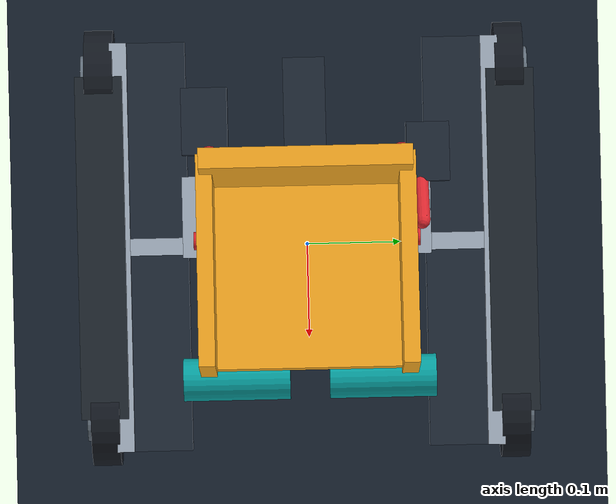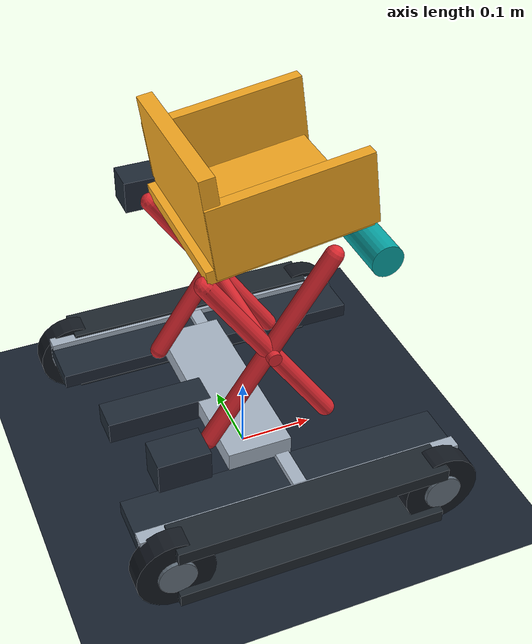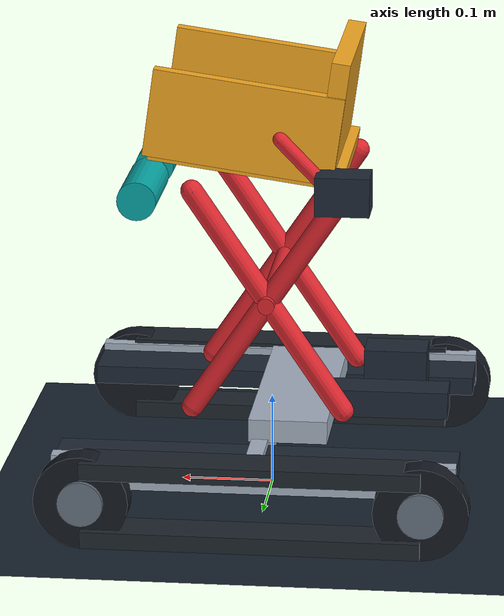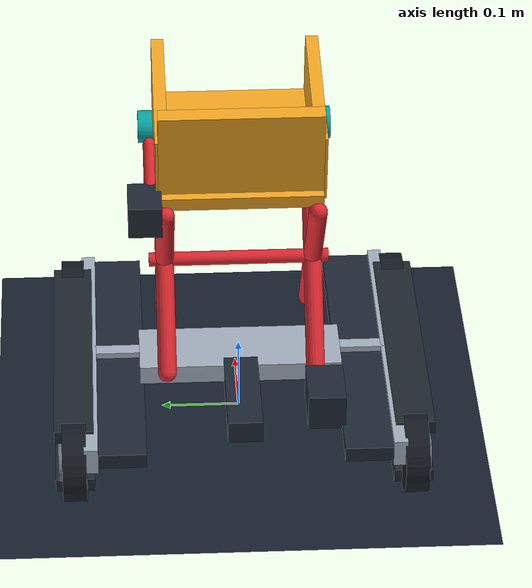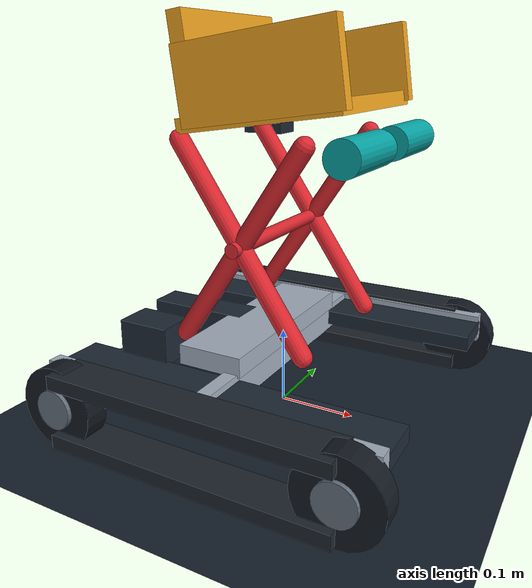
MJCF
<mujoco model="Scissor Basket Goal Loader"><compiler angle="degree" /><visual><global offwidth="800" offheight="600" /><quality offsamples="0" /><headlight ambient=".45 .45 .45" /></visual><worldbody><light pos="0 -1 3" castshadow="false" /><geom type="plane" size="2 2 .1" rgba=".09 .13 .18 1" /><geom type="box" pos="0 -0.195 0.0758" size="0.215 0.009 0.018" euler="0 0 0" rgba=".65 .7 .76 1" contype="0" conaffinity="0" /><geom type="box" pos="0 0.195 0.0758" size="0.215 0.009 0.018" euler="0 0 0" rgba=".65 .7 .76 1" contype="0" conaffinity="0" /><geom type="box" pos="0 0 0.0758" size="0.009 0.195 0.018" euler="0 0 0" rgba=".65 .7 .76 1" contype="0" conaffinity="0" /><geom type="box" pos="0 -0.16 0.0758" size="0.215 0.035 0.01" euler="0 0 0" rgba=".12 .16 .21 1" contype="0" conaffinity="0" /><geom type="box" pos="0 0.16 0.0758" size="0.215 0.035 0.01" euler="0 0 0" rgba=".12 .16 .21 1" contype="0" conaffinity="0" /><geom type="cylinder" pos="-0.18 -0.216 0.0508" size="0.0508 0.015" euler="90 0 0" rgba=".08 .1 .13 1" contype="0" conaffinity="0" /><geom type="cylinder" pos="-0.18 -0.233 0.0508" size="0.024384 0.003" euler="90 0 0" rgba=".4 .45 .5 1" contype="0" conaffinity="0" /><geom type="cylinder" pos="0.18 -0.216 0.0508" size="0.0508 0.015" euler="90 0 0" rgba=".08 .1 .13 1" contype="0" conaffinity="0" /><geom type="cylinder" pos="0.18 -0.233 0.0508" size="0.024384 0.003" euler="90 0 0" rgba=".4 .45 .5 1" contype="0" conaffinity="0" /><geom type="box" pos="0 -0.216 0.0127" size="0.18 0.025 0.009" euler="0 0 0" rgba=".12 .15 .18 1" contype="0" conaffinity="0" /><geom type="box" pos="0 -0.216 0.08889999999999999" size="0.18 0.025 0.009" euler="0 0 0" rgba=".12 .15 .18 1" contype="0" conaffinity="0" /><geom type="cylinder" pos="-0.18 0.216 0.0508" size="0.0508 0.015" euler="90 0 0" rgba=".08 .1 .13 1" contype="0" conaffinity="0" /><geom type="cylinder" pos="-0.18 0.233 0.0508" size="0.024384 0.003" euler="90 0 0" rgba=".4 .45 .5 1" contype="0" conaffinity="0" /><geom type="cylinder" pos="0.18 0.216 0.0508" size="0.0508 0.015" euler="90 0 0" rgba=".08 .1 .13 1" contype="0" conaffinity="0" /><geom type="cylinder" pos="0.18 0.233 0.0508" size="0.024384 0.003" euler="90 0 0" rgba=".4 .45 .5 1" contype="0" conaffinity="0" /><geom type="box" pos="0 0.216 0.0127" size="0.18 0.025 0.009" euler="0 0 0" rgba=".12 .15 .18 1" contype="0" conaffinity="0" /><geom type="box" pos="0 0.216 0.08889999999999999" size="0.18 0.025 0.009" euler="0 0 0" rgba=".12 .15 .18 1" contype="0" conaffinity="0" /><geom type="box" pos="-0.125 0.0 0.1008" size="0.07 0.022 0.015" euler="0 0 0" rgba=".12 .16 .21 1" contype="0" conaffinity="0" /><geom type="box" pos="-0.03 0.0 0.103" size="0.0425 0.13 0.0125" euler="0.0 0.0 0.0" rgba=".65 .7 .76 1" contype="0" conaffinity="0" /><geom type="capsule" pos="-0.005 0.095 0.238" size="0.012 0.1455" euler="0.0 34.0 0.0" rgba=".87 .16 .19 1" contype="0" conaffinity="0" /><geom type="capsule" pos="-0.005 0.095 0.238" size="0.012 0.1455" euler="0.0 -34.0 0.0" rgba=".87 .16 .19 1" contype="0" conaffinity="0" /><geom type="capsule" pos="-0.005 -0.095 0.238" size="0.012 0.1455" euler="0.0 34.0 0.0" rgba=".87 .16 .19 1" contype="0" conaffinity="0" /><geom type="capsule" pos="-0.005 -0.095 0.238" size="0.012 0.1455" euler="0.0 -34.0 0.0" rgba=".87 .16 .19 1" contype="0" conaffinity="0" /><geom type="cylinder" pos="-0.005 0.0 0.238" size="0.009 0.115" euler="90.0 0.0 0.0" rgba=".87 .16 .19 1" contype="0" conaffinity="0" /><geom type="box" pos="0.018 0.0 0.388" size="0.105 0.1025 0.009" euler="0.0 -8.0 0.0" rgba=".96 .66 .13 1" contype="0" conaffinity="0" /><geom type="box" pos="-0.075 0.0 0.443" size="0.01 0.1025 0.06" euler="0.0 -8.0 0.0" rgba=".96 .66 .13 1" contype="0" conaffinity="0" /><geom type="box" pos="0.02 0.098 0.432" size="0.1025 0.008 0.0475" euler="0.0 -8.0 0.0" rgba=".96 .66 .13 1" contype="0" conaffinity="0" /><geom type="box" pos="0.02 -0.098 0.432" size="0.1025 0.008 0.0475" euler="0.0 -8.0 0.0" rgba=".96 .66 .13 1" contype="0" conaffinity="0" /><geom type="cylinder" pos="0.132 0.072 0.353" size="0.021 0.0525" euler="90.0 0.0 0.0" rgba=".03 .65 .65 1" contype="0" conaffinity="0" /><geom type="cylinder" pos="0.132 -0.072 0.353" size="0.021 0.0525" euler="90.0 0.0 0.0" rgba=".03 .65 .65 1" contype="0" conaffinity="0" /><geom type="capsule" pos="-0.051 0.112 0.39" size="0.008 0.0445" euler="0.0 44.0 0.0" rgba=".87 .16 .19 1" contype="0" conaffinity="0" /><geom type="box" pos="-0.13 -0.105 0.105" size="0.035 0.024 0.024" euler="0.0 0.0 0.0" rgba=".12 .16 .21 1" contype="0" conaffinity="0" /><geom type="box" pos="-0.088 0.12 0.368" size="0.029 0.021 0.021" euler="0.0 0.0 0.0" rgba=".12 .16 .21 1" contype="0" conaffinity="0" /></worldbody></mujoco>
